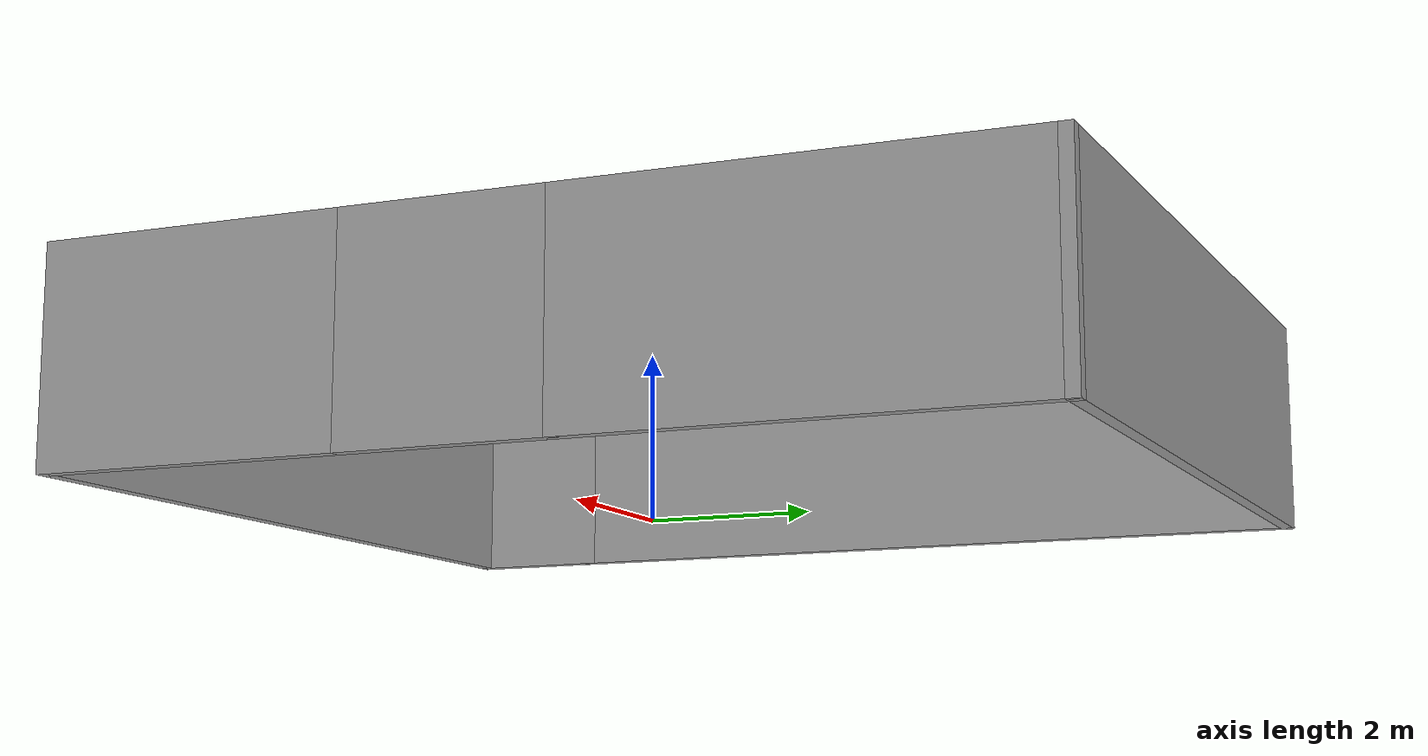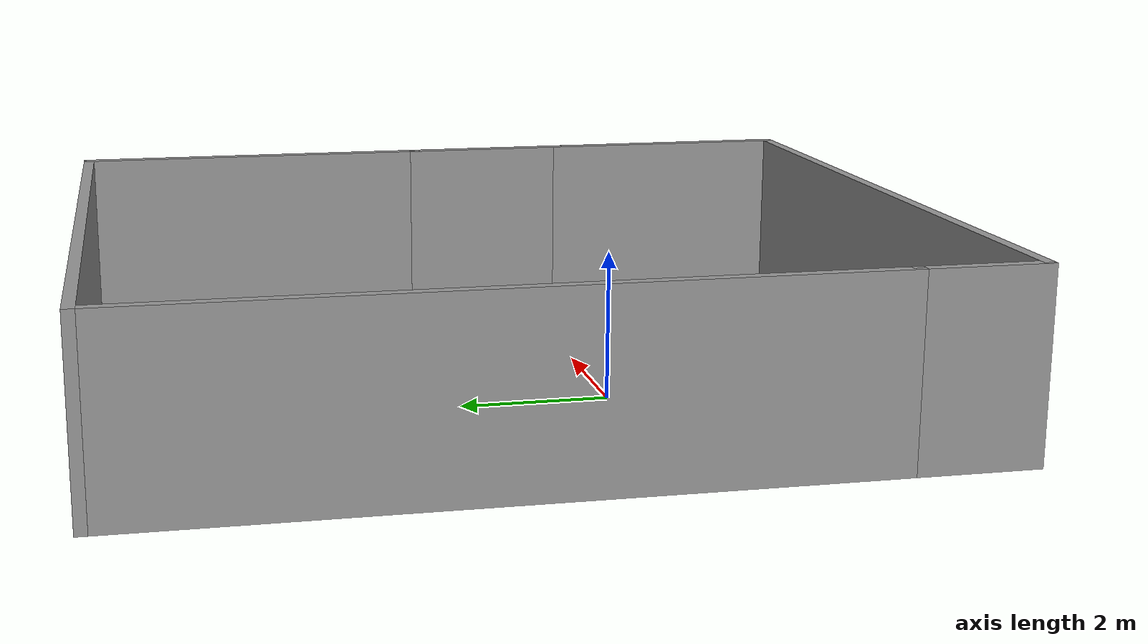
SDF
<?xml version='1.0'?>
<sdf version='1.7'>
  <model name='new_world'>
    <pose>1.06285 1.26809 0 0 -0 0</pose>
    <link name='Wall_10'>
      <collision name='Wall_10_Collision'>
        <geometry>
          <box>
            <size>5.25 0.15 2.5</size>
          </box>
        </geometry>
        <pose>0 0 1.25 0 -0 0</pose>
      </collision>
      <visual name='Wall_10_Visual'>
        <pose>0 0 1.25 0 -0 0</pose>
        <geometry>
          <box>
            <size>5.25 0.15 2.5</size>
          </box>
        </geometry>
        <material>
          <script>
            <uri>file://media/materials/scripts/gazebo.material</uri>
            <name>Gazebo/Grey</name>
          </script>
          <ambient>1 1 1 1</ambient>
        </material>
        <meta>
          <layer>0</layer>
        </meta>
      </visual>
      <pose>4.8 2.975 0 0 -0 1.5708</pose>
    </link>
    <link name='Wall_11'>
      <collision name='Wall_11_Collision'>
        <geometry>
          <box>
            <size>9.75 0.15 2.5</size>
          </box>
        </geometry>
        <pose>0 0 1.25 0 -0 0</pose>
      </collision>
      <visual name='Wall_11_Visual'>
        <pose>0 0 1.25 0 -0 0</pose>
        <geometry>
          <box>
            <size>9.75 0.15 2.5</size>
          </box>
        </geometry>
        <material>
          <script>
            <uri>file://media/materials/scripts/gazebo.material</uri>
            <name>Gazebo/Grey</name>
          </script>
          <ambient>1 1 1 1</ambient>
        </material>
        <meta>
          <layer>0</layer>
        </meta>
      </visual>
      <pose>0 5.525 0 0 -0 3.14159</pose>
    </link>
    <link name='Wall_12'>
      <collision name='Wall_12_Collision'>
        <geometry>
          <box>
            <size>9.6 0.15 2.5</size>
          </box>
        </geometry>
        <pose>0 0 1.25 0 -0 0</pose>
      </collision>
      <visual name='Wall_12_Visual'>
        <pose>0 0 1.25 0 -0 0</pose>
        <geometry>
          <box>
            <size>9.6 0.15 2.5</size>
          </box>
        </geometry>
        <material>
          <script>
            <uri>file://media/materials/scripts/gazebo.material</uri>
            <name>Gazebo/Grey</name>
          </script>
          <ambient>1 1 1 1</ambient>
        </material>
        <meta>
          <layer>0</layer>
        </meta>
      </visual>
      <pose>-4.8 0.8 0 0 -0 -1.5708</pose>
    </link>
    <link name='Wall_4'>
      <collision name='Wall_4_Collision'>
        <geometry>
          <box>
            <size>1.75 0.15 2.5</size>
          </box>
        </geometry>
        <pose>0 0 1.25 0 -0 0</pose>
      </collision>
      <visual name='Wall_4_Visual'>
        <pose>0 0 1.25 0 -0 0</pose>
        <geometry>
          <box>
            <size>1.75 0.15 2.5</size>
          </box>
        </geometry>
        <material>
          <script>
            <uri>file://media/materials/scripts/gazebo.material</uri>
            <name>Gazebo/Grey</name>
          </script>
          <ambient>1 1 1 1</ambient>
        </material>
        <meta>
          <layer>0</layer>
        </meta>
      </visual>
      <pose>-4.8 -4.725 0 0 -0 -1.5708</pose>
    </link>
    <link name='Wall_5'>
      <collision name='Wall_5_Collision'>
        <geometry>
          <box>
            <size>9.75 0.15 2.5</size>
          </box>
        </geometry>
        <pose>0 0 1.25 0 -0 0</pose>
      </collision>
      <visual name='Wall_5_Visual'>
        <pose>0 0 1.25 0 -0 0</pose>
        <geometry>
          <box>
            <size>9.75 0.15 2.5</size>
          </box>
        </geometry>
        <material>
          <script>
            <uri>file://media/materials/scripts/gazebo.material</uri>
            <name>Gazebo/Grey</name>
          </script>
          <ambient>1 1 1 1</ambient>
        </material>
        <meta>
          <layer>0</layer>
        </meta>
      </visual>
      <pose>0 -5.525 0 0 -0 0</pose>
    </link>
    <link name='Wall_6'>
      <collision name='Wall_6_Collision'>
        <geometry>
          <box>
            <size>3.75 0.15 2.5</size>
          </box>
        </geometry>
        <pose>0 0 1.25 0 -0 0</pose>
      </collision>
      <visual name='Wall_6_Visual'>
        <pose>0 0 1.25 0 -0 0</pose>
        <geometry>
          <box>
            <size>3.75 0.15 2.5</size>
          </box>
        </geometry>
        <material>
          <script>
            <uri>file://media/materials/scripts/gazebo.material</uri>
            <name>Gazebo/Grey</name>
          </script>
          <ambient>1 1 1 1</ambient>
        </material>
        <meta>
          <layer>0</layer>
        </meta>
      </visual>
      <pose>4.8 -3.725 0 0 -0 1.5708</pose>
    </link>
    <link name='Wall_9'>
      <collision name='Wall_9_Collision'>
        <geometry>
          <box>
            <size>2.5 0.15 2.5</size>
          </box>
        </geometry>
        <pose>0 0 1.25 0 -0 0</pose>
      </collision>
      <visual name='Wall_9_Visual'>
        <pose>0 0 1.25 0 -0 0</pose>
        <geometry>
          <box>
            <size>2.5 0.15 2.5</size>
          </box>
        </geometry>
        <material>
          <script>
            <uri>file://media/materials/scripts/gazebo.material</uri>
            <name>Gazebo/Grey</name>
          </script>
          <ambient>1 1 1 1</ambient>
        </material>
        <meta>
          <layer>0</layer>
        </meta>
      </visual>
      <pose>4.8 -0.75 0 0 -0 1.5708</pose>
    </link>
    <static>1</static>
  </model>
</sdf>
